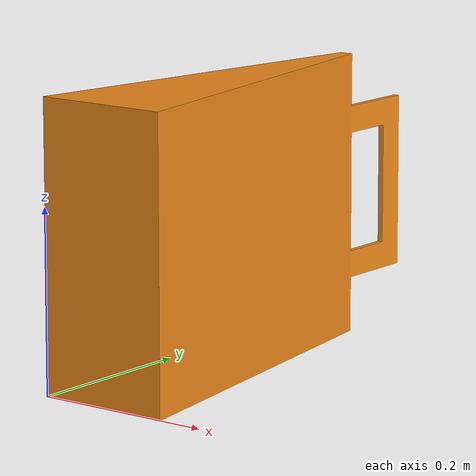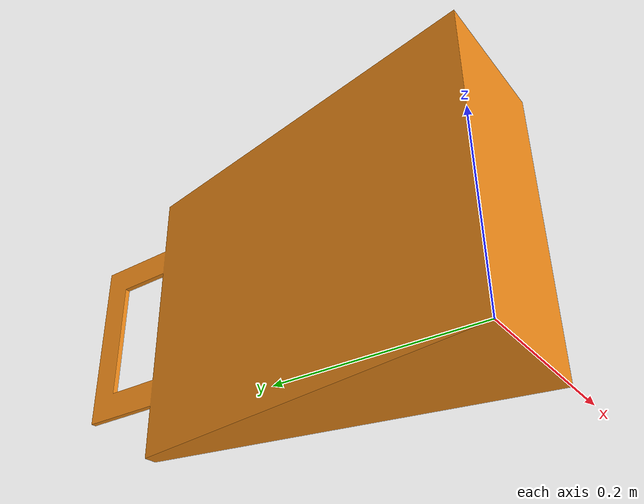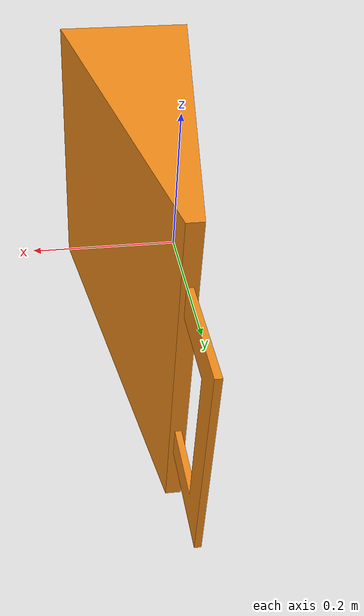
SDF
<?xml version='1.0'?>
<sdf version='1.6'>
  <model name='bag'>
    <link name='link_0'>
      <pose frame=''>0 0 0 0 0 0</pose>
      <inertial>
        <pose frame=''>0.05 0.05 0.11 0 0 0</pose>
        <mass>0.269</mass>
        <inertia>
          <ixx>0.002</ixx>
          <ixy>0</ixy>
          <ixz>0</ixz>
          <iyy>0.002</iyy>
          <iyz>0</iyz>
          <izz>0.00075</izz>
        </inertia>
      </inertial>
      <visual name='visual'>
        <geometry>
          <mesh>
            <uri>file://isr-testbed/bag_orange/bag_no_colour.dae</uri>
            <scale>0.0015 0.0015 0.0015</scale>
          </mesh>
        </geometry>
        <material>
	  <script>
	    <uri>file://media/materials/scripts/gazebo.material</uri>
	    <name>Gazebo/Orange</name>
	  </script>
        </material>
        <cast_shadows>1</cast_shadows>
        <transparency>0</transparency>
      </visual>
      <collision name='collision'>
        <geometry>
          <mesh>
            <uri>file://isr-testbed/bag_orange/bag_no_colour.dae</uri>
            <scale>0.0015 0.0015 0.0015</scale>
          </mesh>
        </geometry>
      </collision>
    </link>
    <static>0</static>
    <allow_auto_disable>1</allow_auto_disable>
  </model>
</sdf>
